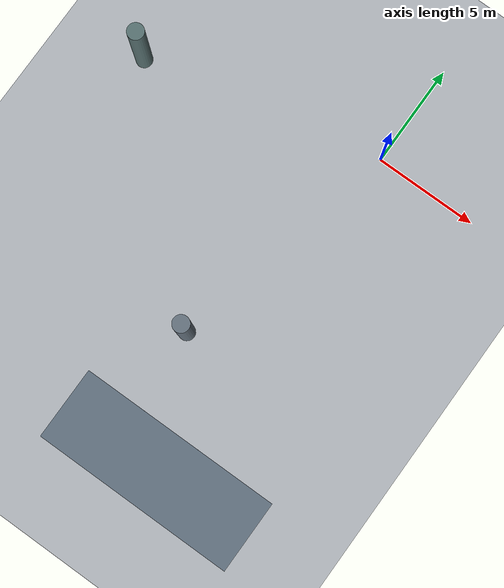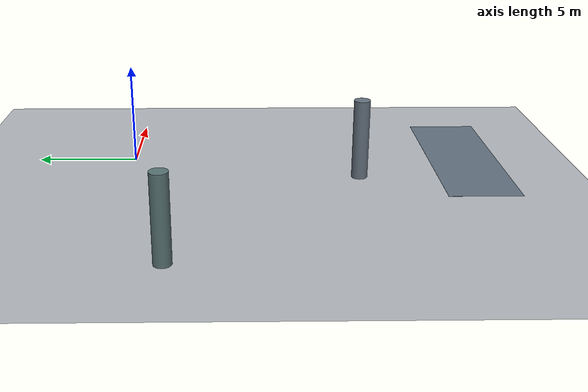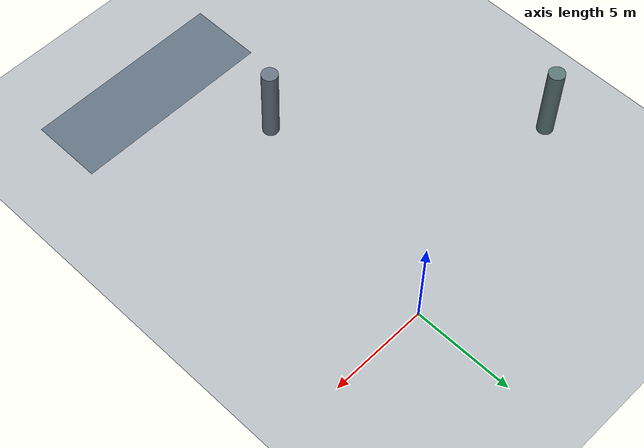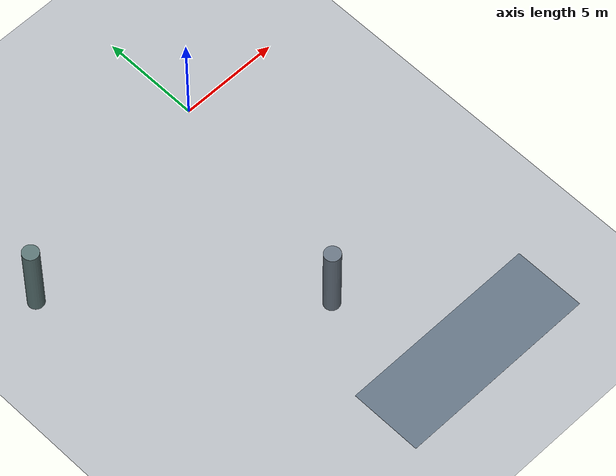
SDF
<sdf version="1.8">
 <world name="swarm_world">
  <model name="ground_plane">
   <static>true</static>
   <link name="link">
    <collision name="collision">
     <geometry><plane><normal>0 0 1</normal><size>100 100</size></plane></geometry>
    </collision>
    <visual name="visual">
     <geometry><plane><normal>0 0 1</normal><size>100 100</size></plane></geometry>
     <material>
      <ambient>0.70 0.72 0.74 1.0</ambient>
      <diffuse>0.70 0.72 0.74 1.0</diffuse>
      <specular>0.1 0.1 0.1 1.0</specular>
     </material>
    </visual>
   </link>
  </model>
  <model name="staging_pad">
   <static>true</static>
   <link name="pad_link">
    <visual name="pad_v">
     <pose>0.0 -17.25 0.003 0 0 0</pose>
     <geometry><box><size>10.0 3.5 0.005</size></box></geometry>
     <material><ambient>0.26 0.28 0.32 1.0</ambient><diffuse>0.26 0.28 0.32 1.0</diffuse></material>
    </visual>
    <visual name="pad_border">
     <pose>0.0 -17.25 0.005 0 0 0</pose>
     <geometry><box><size>10.1 3.6 0.003</size></box></geometry>
     <material><ambient>0.38 0.44 0.50 1.0</ambient><diffuse>0.38 0.44 0.50 1.0</diffuse></material>
    </visual>
   </link>
  </model>
  <model name="static_obs_301">
   <static>true</static>
   <pose>-2.5000 -11.5000 2.0000 0 0 0</pose>
   <link name="link">
    <collision name="collision">
     <geometry><cylinder><radius>0.4000</radius><length>4.0000</length></cylinder></geometry>
    </collision>
    <visual name="visual">
     <geometry><cylinder><radius>0.4000</radius><length>4.0000</length></cylinder></geometry>
     <material>
      <ambient>0.40 0.45 0.50 1.0</ambient>
      <diffuse>0.40 0.45 0.50 1.0</diffuse>
      <specular>0.3 0.3 0.3 1.0</specular>
     </material>
    </visual>
   </link>
  </model>
  <model name="static_obs_303">
   <static>true</static>
   <pose>-11.5000 -2.5000 2.0000 0 0 0</pose>
   <link name="link">
    <collision name="collision">
     <geometry><cylinder><radius>0.4000</radius><length>4.0000</length></cylinder></geometry>
    </collision>
    <visual name="visual">
     <geometry><cylinder><radius>0.4000</radius><length>4.0000</length></cylinder></geometry>
     <material>
      <ambient>0.35 0.45 0.45 1.0</ambient>
      <diffuse>0.35 0.45 0.45 1.0</diffuse>
      <specular>0.3 0.3 0.3 1.0</specular>
     </material>
    </visual>
   </link>
  </model>
 </world>
</sdf>
